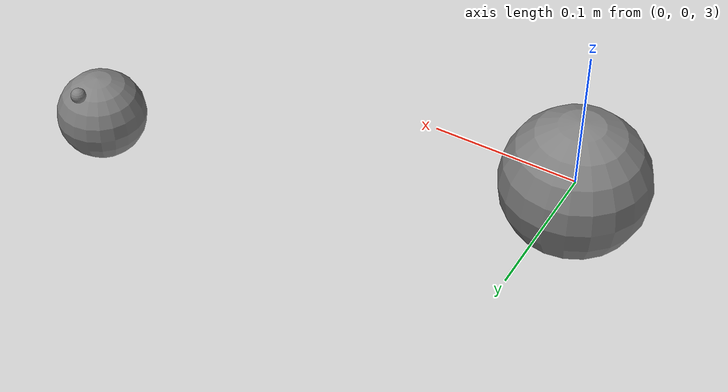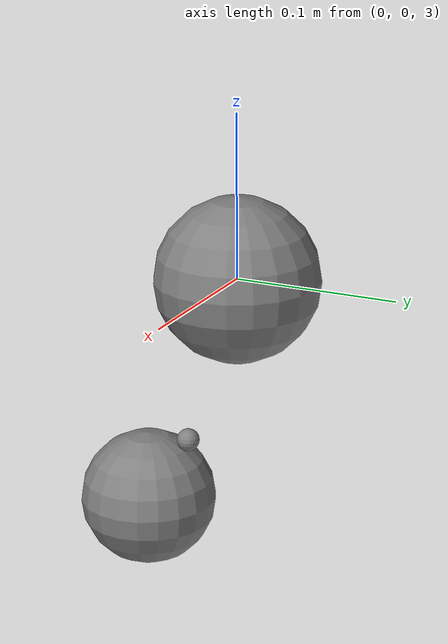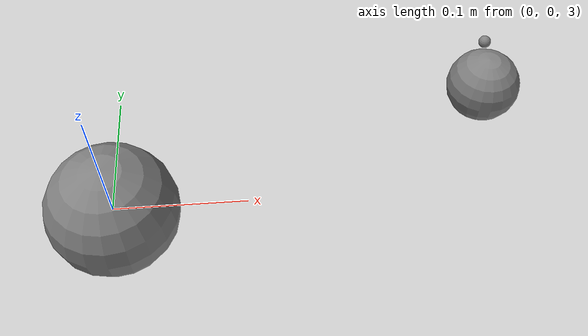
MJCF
<mujoco model="mounted_loads">
  <compiler angle="radian" autolimits="true"/>
  <default><geom contype="0" conaffinity="0"/></default>
  <worldbody>
    <body name="base" pos="0 0 3">
      <inertial pos="0 0 0" mass="1" diaginertia="0.1 0.1 0.1"/>
      <geom type="sphere" size="0.05"/>
      <body name="arm">
        <joint name="hinge" type="hinge" axis="0 0 1" damping="0"/>
        <inertial pos="0.2 0 0" mass="2" diaginertia="0.03 0.04 0.05"/>
        <geom type="sphere" size="0.04"/>
        <site name="wrist" pos="0.03 0 0"/>
        <body name="tool" pos="0.3 0.1 0">
          <inertial pos="0.04 -0.02 0.01" mass="0.5" diaginertia="0.002 0.003 0.004"/>
          <geom type="sphere" size="0.03"/>
          <site name="load_cell" pos="0 0.02 0.03" quat="0.7071067811865476 0 0 0.7071067811865476"/>
        </body>
      </body>
    </body>
  </worldbody>
  <sensor>
    <force name="wrist_load" site="wrist"/>
    <torque name="tool_load" site="load_cell"/>
    <framepos name="tool_pose" objtype="body" objname="tool"/>
  </sensor>
</mujoco>
